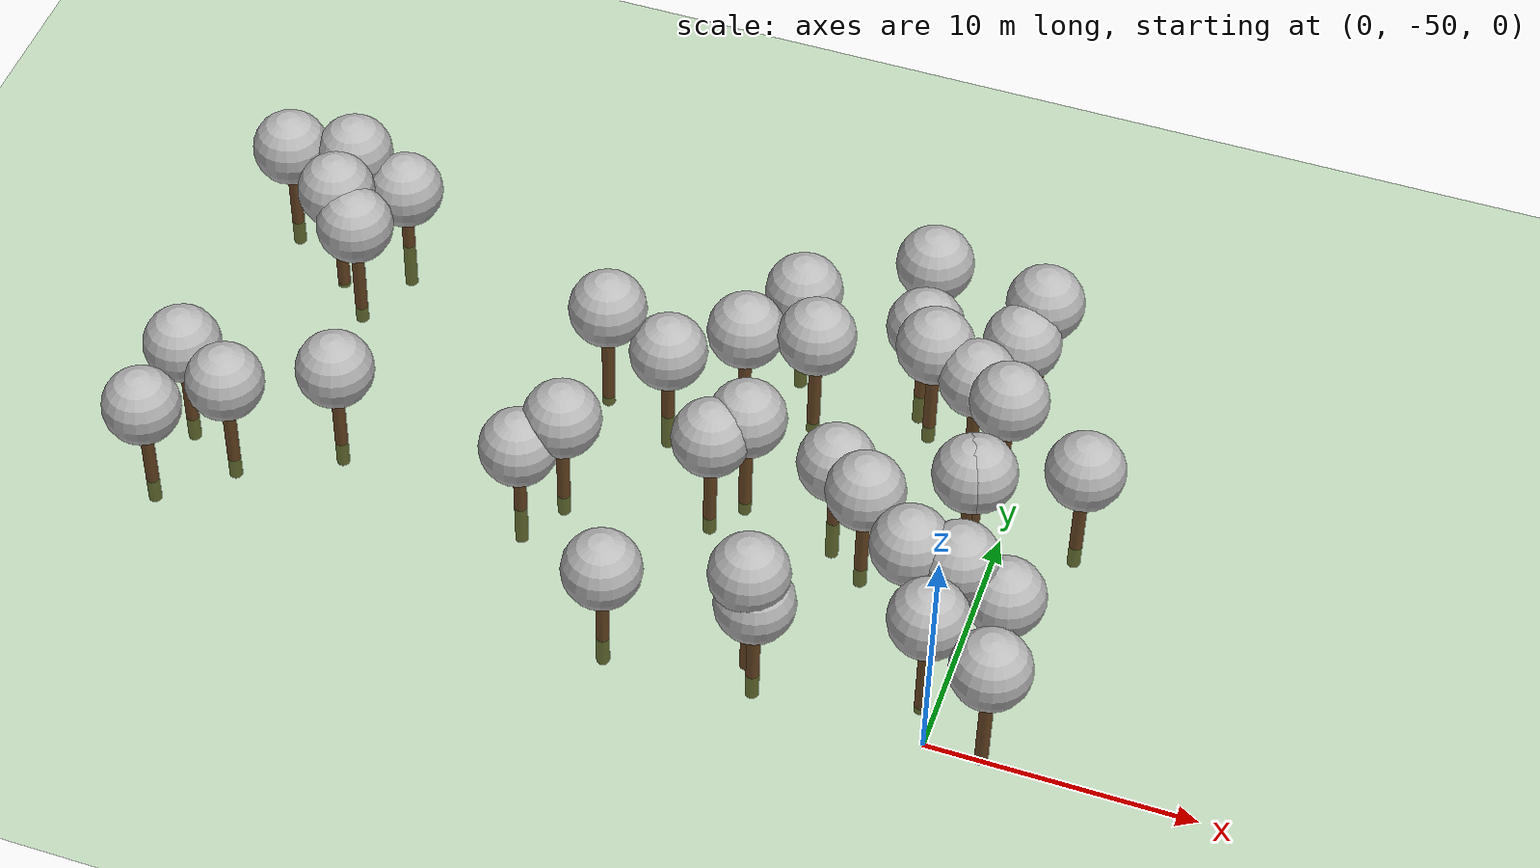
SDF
<sdf version="1.5">
 <world name="default">
  <model name="tree_simple491">
   <static>1</static>
   <link name="link">
    <pose>0 0 0.1 0 -0 0</pose>
    <collision name="collision_trunk">
     <pose>0 0 2 0 -0 0</pose>
     <geometry><cylinder><radius>0.25</radius><length>4</length></cylinder></geometry>
    </collision>
    <collision name="collision_treetop">
     <pose>0 0 5.2 0 -0 0</pose>
     <geometry><sphere><radius>1.5</radius></sphere></geometry>
    </collision>
    <visual name="trunk">
     <pose>0 0 2 0 -0 0</pose>
     <geometry><cylinder><radius>0.25</radius><length>4</length></cylinder></geometry>
     <material>
      <script>
       <uri>model://tree_simple/scripts</uri>
       <uri>model://tree_simple/materials/textures</uri>
       <name>TreeSimple/Trunk</name>
      </script>
     </material>
    </visual>
    <visual name="treetop">
     <pose>0 0 5.2 0 -0 0</pose>
     <geometry><sphere><radius>1.5</radius></sphere></geometry>
     <material>
      <script>
       <uri>model://tree_simple/scripts</uri>
       <uri>model://tree_simple/materials/textures</uri>
       <name>TreeSimple/Treetop</name>
      </script>
     </material>
    </visual>
   </link>
   <pose>-12.3902503735 -49.1082665042 -1.4765880961699187 0 -0 0</pose>
  </model>
  <model name="tree_simple458">
   <static>1</static>
   <link name="link">
    <pose>0 0 0.1 0 -0 0</pose>
    <collision name="collision_trunk">
     <pose>0 0 2 0 -0 0</pose>
     <geometry><cylinder><radius>0.25</radius><length>4</length></cylinder></geometry>
    </collision>
    <collision name="collision_treetop">
     <pose>0 0 5.2 0 -0 0</pose>
     <geometry><sphere><radius>1.5</radius></sphere></geometry>
    </collision>
    <visual name="trunk">
     <pose>0 0 2 0 -0 0</pose>
     <geometry><cylinder><radius>0.25</radius><length>4</length></cylinder></geometry>
     <material>
      <script>
       <uri>model://tree_simple/scripts</uri>
       <uri>model://tree_simple/materials/textures</uri>
       <name>TreeSimple/Trunk</name>
      </script>
     </material>
    </visual>
    <visual name="treetop">
     <pose>0 0 5.2 0 -0 0</pose>
     <geometry><sphere><radius>1.5</radius></sphere></geometry>
     <material>
      <script>
       <uri>model://tree_simple/scripts</uri>
       <uri>model://tree_simple/materials/textures</uri>
       <name>TreeSimple/Treetop</name>
      </script>
     </material>
    </visual>
   </link>
   <pose>2.06613671761 -49.6676263837 -0.43221228947725965 0 -0 0</pose>
  </model>
  <model name="tree_simple454">
   <static>1</static>
   <link name="link">
    <pose>0 0 0.1 0 -0 0</pose>
    <collision name="collision_trunk">
     <pose>0 0 2 0 -0 0</pose>
     <geometry><cylinder><radius>0.25</radius><length>4</length></cylinder></geometry>
    </collision>
    <collision name="collision_treetop">
     <pose>0 0 5.2 0 -0 0</pose>
     <geometry><sphere><radius>1.5</radius></sphere></geometry>
    </collision>
    <visual name="trunk">
     <pose>0 0 2 0 -0 0</pose>
     <geometry><cylinder><radius>0.25</radius><length>4</length></cylinder></geometry>
     <material>
      <script>
       <uri>model://tree_simple/scripts</uri>
       <uri>model://tree_simple/materials/textures</uri>
       <name>TreeSimple/Trunk</name>
      </script>
     </material>
    </visual>
    <visual name="treetop">
     <pose>0 0 5.2 0 -0 0</pose>
     <geometry><sphere><radius>1.5</radius></sphere></geometry>
     <material>
      <script>
       <uri>model://tree_simple/scripts</uri>
       <uri>model://tree_simple/materials/textures</uri>
       <name>TreeSimple/Treetop</name>
      </script>
     </material>
    </visual>
   </link>
   <pose>-1.19781681146 -40.4261160925 -1.4480679894615223 0 -0 0</pose>
  </model>
  <model name="tree_simple447">
   <static>1</static>
   <link name="link">
    <pose>0 0 0.1 0 -0 0</pose>
    <collision name="collision_trunk">
     <pose>0 0 2 0 -0 0</pose>
     <geometry><cylinder><radius>0.25</radius><length>4</length></cylinder></geometry>
    </collision>
    <collision name="collision_treetop">
     <pose>0 0 5.2 0 -0 0</pose>
     <geometry><sphere><radius>1.5</radius></sphere></geometry>
    </collision>
    <visual name="trunk">
     <pose>0 0 2 0 -0 0</pose>
     <geometry><cylinder><radius>0.25</radius><length>4</length></cylinder></geometry>
     <material>
      <script>
       <uri>model://tree_simple/scripts</uri>
       <uri>model://tree_simple/materials/textures</uri>
       <name>TreeSimple/Trunk</name>
      </script>
     </material>
    </visual>
    <visual name="treetop">
     <pose>0 0 5.2 0 -0 0</pose>
     <geometry><sphere><radius>1.5</radius></sphere></geometry>
     <material>
      <script>
       <uri>model://tree_simple/scripts</uri>
       <uri>model://tree_simple/materials/textures</uri>
       <name>TreeSimple/Treetop</name>
      </script>
     </material>
    </visual>
   </link>
   <pose>-6.1509747219 -41.0422803315 -2.0466251988386843 0 -0 0</pose>
  </model>
  <model name="tree_simple433">
   <static>1</static>
   <link name="link">
    <pose>0 0 0.1 0 -0 0</pose>
    <collision name="collision_trunk">
     <pose>0 0 2 0 -0 0</pose>
     <geometry><cylinder><radius>0.25</radius><length>4</length></cylinder></geometry>
    </collision>
    <collision name="collision_treetop">
     <pose>0 0 5.2 0 -0 0</pose>
     <geometry><sphere><radius>1.5</radius></sphere></geometry>
    </collision>
    <visual name="trunk">
     <pose>0 0 2 0 -0 0</pose>
     <geometry><cylinder><radius>0.25</radius><length>4</length></cylinder></geometry>
     <material>
      <script>
       <uri>model://tree_simple/scripts</uri>
       <uri>model://tree_simple/materials/textures</uri>
       <name>TreeSimple/Trunk</name>
      </script>
     </material>
    </visual>
    <visual name="treetop">
     <pose>0 0 5.2 0 -0 0</pose>
     <geometry><sphere><radius>1.5</radius></sphere></geometry>
     <material>
      <script>
       <uri>model://tree_simple/scripts</uri>
       <uri>model://tree_simple/materials/textures</uri>
       <name>TreeSimple/Treetop</name>
      </script>
     </material>
    </visual>
   </link>
   <pose>-27.0163612707 -36.6075625798 -0.8725457101761771 0 -0 0</pose>
  </model>
  <model name="tree_simple408">
   <static>1</static>
   <link name="link">
    <pose>0 0 0.1 0 -0 0</pose>
    <collision name="collision_trunk">
     <pose>0 0 2 0 -0 0</pose>
     <geometry><cylinder><radius>0.25</radius><length>4</length></cylinder></geometry>
    </collision>
    <collision name="collision_treetop">
     <pose>0 0 5.2 0 -0 0</pose>
     <geometry><sphere><radius>1.5</radius></sphere></geometry>
    </collision>
    <visual name="trunk">
     <pose>0 0 2 0 -0 0</pose>
     <geometry><cylinder><radius>0.25</radius><length>4</length></cylinder></geometry>
     <material>
      <script>
       <uri>model://tree_simple/scripts</uri>
       <uri>model://tree_simple/materials/textures</uri>
       <name>TreeSimple/Trunk</name>
      </script>
     </material>
    </visual>
    <visual name="treetop">
     <pose>0 0 5.2 0 -0 0</pose>
     <geometry><sphere><radius>1.5</radius></sphere></geometry>
     <material>
      <script>
       <uri>model://tree_simple/scripts</uri>
       <uri>model://tree_simple/materials/textures</uri>
       <name>TreeSimple/Treetop</name>
      </script>
     </material>
    </visual>
   </link>
   <pose>-16.0994347695 -43.1531583175 -1.0959608389222675 0 -0 0</pose>
  </model>
  <model name="tree_simple407">
   <static>1</static>
   <link name="link">
    <pose>0 0 0.1 0 -0 0</pose>
    <collision name="collision_trunk">
     <pose>0 0 2 0 -0 0</pose>
     <geometry><cylinder><radius>0.25</radius><length>4</length></cylinder></geometry>
    </collision>
    <collision name="collision_treetop">
     <pose>0 0 5.2 0 -0 0</pose>
     <geometry><sphere><radius>1.5</radius></sphere></geometry>
    </collision>
    <visual name="trunk">
     <pose>0 0 2 0 -0 0</pose>
     <geometry><cylinder><radius>0.25</radius><length>4</length></cylinder></geometry>
     <material>
      <script>
       <uri>model://tree_simple/scripts</uri>
       <uri>model://tree_simple/materials/textures</uri>
       <name>TreeSimple/Trunk</name>
      </script>
     </material>
    </visual>
    <visual name="treetop">
     <pose>0 0 5.2 0 -0 0</pose>
     <geometry><sphere><radius>1.5</radius></sphere></geometry>
     <material>
      <script>
       <uri>model://tree_simple/scripts</uri>
       <uri>model://tree_simple/materials/textures</uri>
       <name>TreeSimple/Treetop</name>
      </script>
     </material>
    </visual>
   </link>
   <pose>-31.2268758756 -33.0617209784 -1.2989755848675624 0 -0 0</pose>
  </model>
  <model name="tree_simple397">
   <static>1</static>
   <link name="link">
    <pose>0 0 0.1 0 -0 0</pose>
    <collision name="collision_trunk">
     <pose>0 0 2 0 -0 0</pose>
     <geometry><cylinder><radius>0.25</radius><length>4</length></cylinder></geometry>
    </collision>
    <collision name="collision_treetop">
     <pose>0 0 5.2 0 -0 0</pose>
     <geometry><sphere><radius>1.5</radius></sphere></geometry>
    </collision>
    <visual name="trunk">
     <pose>0 0 2 0 -0 0</pose>
     <geometry><cylinder><radius>0.25</radius><length>4</length></cylinder></geometry>
     <material>
      <script>
       <uri>model://tree_simple/scripts</uri>
       <uri>model://tree_simple/materials/textures</uri>
       <name>TreeSimple/Trunk</name>
      </script>
     </material>
    </visual>
    <visual name="treetop">
     <pose>0 0 5.2 0 -0 0</pose>
     <geometry><sphere><radius>1.5</radius></sphere></geometry>
     <material>
      <script>
       <uri>model://tree_simple/scripts</uri>
       <uri>model://tree_simple/materials/textures</uri>
       <name>TreeSimple/Treetop</name>
      </script>
     </material>
    </visual>
   </link>
   <pose>-11.3370979395 -35.9987020926 -1.8471052126580298 0 -0 0</pose>
  </model>
  <model name="tree_simple382">
   <static>1</static>
   <link name="link">
    <pose>0 0 0.1 0 -0 0</pose>
    <collision name="collision_trunk">
     <pose>0 0 2 0 -0 0</pose>
     <geometry><cylinder><radius>0.25</radius><length>4</length></cylinder></geometry>
    </collision>
    <collision name="collision_treetop">
     <pose>0 0 5.2 0 -0 0</pose>
     <geometry><sphere><radius>1.5</radius></sphere></geometry>
    </collision>
    <visual name="trunk">
     <pose>0 0 2 0 -0 0</pose>
     <geometry><cylinder><radius>0.25</radius><length>4</length></cylinder></geometry>
     <material>
      <script>
       <uri>model://tree_simple/scripts</uri>
       <uri>model://tree_simple/materials/textures</uri>
       <name>TreeSimple/Trunk</name>
      </script>
     </material>
    </visual>
    <visual name="treetop">
     <pose>0 0 5.2 0 -0 0</pose>
     <geometry><sphere><radius>1.5</radius></sphere></geometry>
     <material>
      <script>
       <uri>model://tree_simple/scripts</uri>
       <uri>model://tree_simple/materials/textures</uri>
       <name>TreeSimple/Treetop</name>
      </script>
     </material>
    </visual>
   </link>
   <pose>-13.7339502639 -38.0385425652 -1.8283140507629358 0 -0 0</pose>
  </model>
  <model name="tree_simple368">
   <static>1</static>
   <link name="link">
    <pose>0 0 0.1 0 -0 0</pose>
    <collision name="collision_trunk">
     <pose>0 0 2 0 -0 0</pose>
     <geometry><cylinder><radius>0.25</radius><length>4</length></cylinder></geometry>
    </collision>
    <collision name="collision_treetop">
     <pose>0 0 5.2 0 -0 0</pose>
     <geometry><sphere><radius>1.5</radius></sphere></geometry>
    </collision>
    <visual name="trunk">
     <pose>0 0 2 0 -0 0</pose>
     <geometry><cylinder><radius>0.25</radius><length>4</length></cylinder></geometry>
     <material>
      <script>
       <uri>model://tree_simple/scripts</uri>
       <uri>model://tree_simple/materials/textures</uri>
       <name>TreeSimple/Trunk</name>
      </script>
     </material>
    </visual>
    <visual name="treetop">
     <pose>0 0 5.2 0 -0 0</pose>
     <geometry><sphere><radius>1.5</radius></sphere></geometry>
     <material>
      <script>
       <uri>model://tree_simple/scripts</uri>
       <uri>model://tree_simple/materials/textures</uri>
       <name>TreeSimple/Treetop</name>
      </script>
     </material>
    </visual>
   </link>
   <pose>-2.27490769551 -35.975306792 -1.2906108035373156 0 -0 0</pose>
  </model>
  <model name="tree_simple357">
   <static>1</static>
   <link name="link">
    <pose>0 0 0.1 0 -0 0</pose>
    <collision name="collision_trunk">
     <pose>0 0 2 0 -0 0</pose>
     <geometry><cylinder><radius>0.25</radius><length>4</length></cylinder></geometry>
    </collision>
    <collision name="collision_treetop">
     <pose>0 0 5.2 0 -0 0</pose>
     <geometry><sphere><radius>1.5</radius></sphere></geometry>
    </collision>
    <visual name="trunk">
     <pose>0 0 2 0 -0 0</pose>
     <geometry><cylinder><radius>0.25</radius><length>4</length></cylinder></geometry>
     <material>
      <script>
       <uri>model://tree_simple/scripts</uri>
       <uri>model://tree_simple/materials/textures</uri>
       <name>TreeSimple/Trunk</name>
      </script>
     </material>
    </visual>
    <visual name="treetop">
     <pose>0 0 5.2 0 -0 0</pose>
     <geometry><sphere><radius>1.5</radius></sphere></geometry>
     <material>
      <script>
       <uri>model://tree_simple/scripts</uri>
       <uri>model://tree_simple/materials/textures</uri>
       <name>TreeSimple/Treetop</name>
      </script>
     </material>
    </visual>
   </link>
   <pose>-28.5404779553 -45.5660911112 -1.1019529273899091 0 -0 0</pose>
  </model>
  <model name="tree_simple348">
   <static>1</static>
   <link name="link">
    <pose>0 0 0.1 0 -0 0</pose>
    <collision name="collision_trunk">
     <pose>0 0 2 0 -0 0</pose>
     <geometry><cylinder><radius>0.25</radius><length>4</length></cylinder></geometry>
    </collision>
    <collision name="collision_treetop">
     <pose>0 0 5.2 0 -0 0</pose>
     <geometry><sphere><radius>1.5</radius></sphere></geometry>
    </collision>
    <visual name="trunk">
     <pose>0 0 2 0 -0 0</pose>
     <geometry><cylinder><radius>0.25</radius><length>4</length></cylinder></geometry>
     <material>
      <script>
       <uri>model://tree_simple/scripts</uri>
       <uri>model://tree_simple/materials/textures</uri>
       <name>TreeSimple/Trunk</name>
      </script>
     </material>
    </visual>
    <visual name="treetop">
     <pose>0 0 5.2 0 -0 0</pose>
     <geometry><sphere><radius>1.5</radius></sphere></geometry>
     <material>
      <script>
       <uri>model://tree_simple/scripts</uri>
       <uri>model://tree_simple/materials/textures</uri>
       <name>TreeSimple/Treetop</name>
      </script>
     </material>
    </visual>
   </link>
   <pose>-31.0103174471 -47.5688671712 -1.2379988239180781 0 -0 0</pose>
  </model>
  <model name="tree_simple344">
   <static>1</static>
   <link name="link">
    <pose>0 0 0.1 0 -0 0</pose>
    <collision name="collision_trunk">
     <pose>0 0 2 0 -0 0</pose>
     <geometry><cylinder><radius>0.25</radius><length>4</length></cylinder></geometry>
    </collision>
    <collision name="collision_treetop">
     <pose>0 0 5.2 0 -0 0</pose>
     <geometry><sphere><radius>1.5</radius></sphere></geometry>
    </collision>
    <visual name="trunk">
     <pose>0 0 2 0 -0 0</pose>
     <geometry><cylinder><radius>0.25</radius><length>4</length></cylinder></geometry>
     <material>
      <script>
       <uri>model://tree_simple/scripts</uri>
       <uri>model://tree_simple/materials/textures</uri>
       <name>TreeSimple/Trunk</name>
      </script>
     </material>
    </visual>
    <visual name="treetop">
     <pose>0 0 5.2 0 -0 0</pose>
     <geometry><sphere><radius>1.5</radius></sphere></geometry>
     <material>
      <script>
       <uri>model://tree_simple/scripts</uri>
       <uri>model://tree_simple/materials/textures</uri>
       <name>TreeSimple/Treetop</name>
      </script>
     </material>
    </visual>
   </link>
   <pose>-1.01406181855 -40.356708741 -1.4358924933578103 0 -0 0</pose>
  </model>
  <model name="tree_simple334">
   <static>1</static>
   <link name="link">
    <pose>0 0 0.1 0 -0 0</pose>
    <collision name="collision_trunk">
     <pose>0 0 2 0 -0 0</pose>
     <geometry><cylinder><radius>0.25</radius><length>4</length></cylinder></geometry>
    </collision>
    <collision name="collision_treetop">
     <pose>0 0 5.2 0 -0 0</pose>
     <geometry><sphere><radius>1.5</radius></sphere></geometry>
    </collision>
    <visual name="trunk">
     <pose>0 0 2 0 -0 0</pose>
     <geometry><cylinder><radius>0.25</radius><length>4</length></cylinder></geometry>
     <material>
      <script>
       <uri>model://tree_simple/scripts</uri>
       <uri>model://tree_simple/materials/textures</uri>
       <name>TreeSimple/Trunk</name>
      </script>
     </material>
    </visual>
    <visual name="treetop">
     <pose>0 0 5.2 0 -0 0</pose>
     <geometry><sphere><radius>1.5</radius></sphere></geometry>
     <material>
      <script>
       <uri>model://tree_simple/scripts</uri>
       <uri>model://tree_simple/materials/textures</uri>
       <name>TreeSimple/Treetop</name>
      </script>
     </material>
    </visual>
   </link>
   <pose>-4.1581298625 -35.2035688942 -0.9701988496011371 0 -0 0</pose>
  </model>
  <model name="tree_simple305">
   <static>1</static>
   <link name="link">
    <pose>0 0 0.1 0 -0 0</pose>
    <collision name="collision_trunk">
     <pose>0 0 2 0 -0 0</pose>
     <geometry><cylinder><radius>0.25</radius><length>4</length></cylinder></geometry>
    </collision>
    <collision name="collision_treetop">
     <pose>0 0 5.2 0 -0 0</pose>
     <geometry><sphere><radius>1.5</radius></sphere></geometry>
    </collision>
    <visual name="trunk">
     <pose>0 0 2 0 -0 0</pose>
     <geometry><cylinder><radius>0.25</radius><length>4</length></cylinder></geometry>
     <material>
      <script>
       <uri>model://tree_simple/scripts</uri>
       <uri>model://tree_simple/materials/textures</uri>
       <name>TreeSimple/Trunk</name>
      </script>
     </material>
    </visual>
    <visual name="treetop">
     <pose>0 0 5.2 0 -0 0</pose>
     <geometry><sphere><radius>1.5</radius></sphere></geometry>
     <material>
      <script>
       <uri>model://tree_simple/scripts</uri>
       <uri>model://tree_simple/materials/textures</uri>
       <name>TreeSimple/Treetop</name>
      </script>
     </material>
    </visual>
   </link>
   <pose>-16.2250054706 -37.82270562 -0.5545832726990889 0 -0 0</pose>
  </model>
  <model name="tree_simple285">
   <static>1</static>
   <link name="link">
    <pose>0 0 0.1 0 -0 0</pose>
    <collision name="collision_trunk">
     <pose>0 0 2 0 -0 0</pose>
     <geometry><cylinder><radius>0.25</radius><length>4</length></cylinder></geometry>
    </collision>
    <collision name="collision_treetop">
     <pose>0 0 5.2 0 -0 0</pose>
     <geometry><sphere><radius>1.5</radius></sphere></geometry>
    </collision>
    <visual name="trunk">
     <pose>0 0 2 0 -0 0</pose>
     <geometry><cylinder><radius>0.25</radius><length>4</length></cylinder></geometry>
     <material>
      <script>
       <uri>model://tree_simple/scripts</uri>
       <uri>model://tree_simple/materials/textures</uri>
       <name>TreeSimple/Trunk</name>
      </script>
     </material>
    </visual>
    <visual name="treetop">
     <pose>0 0 5.2 0 -0 0</pose>
     <geometry><sphere><radius>1.5</radius></sphere></geometry>
     <material>
      <script>
       <uri>model://tree_simple/scripts</uri>
       <uri>model://tree_simple/materials/textures</uri>
       <name>TreeSimple/Treetop</name>
      </script>
     </material>
    </visual>
   </link>
   <pose>-0.758587547347 -37.1758267931 -0.7497815790523655 0 -0 0</pose>
  </model>
  <model name="tree_simple257">
   <static>1</static>
   <link name="link">
    <pose>0 0 0.1 0 -0 0</pose>
    <collision name="collision_trunk">
     <pose>0 0 2 0 -0 0</pose>
     <geometry><cylinder><radius>0.25</radius><length>4</length></cylinder></geometry>
    </collision>
    <collision name="collision_treetop">
     <pose>0 0 5.2 0 -0 0</pose>
     <geometry><sphere><radius>1.5</radius></sphere></geometry>
    </collision>
    <visual name="trunk">
     <pose>0 0 2 0 -0 0</pose>
     <geometry><cylinder><radius>0.25</radius><length>4</length></cylinder></geometry>
     <material>
      <script>
       <uri>model://tree_simple/scripts</uri>
       <uri>model://tree_simple/materials/textures</uri>
       <name>TreeSimple/Trunk</name>
      </script>
     </material>
    </visual>
    <visual name="treetop">
     <pose>0 0 5.2 0 -0 0</pose>
     <geometry><sphere><radius>1.5</radius></sphere></geometry>
     <material>
      <script>
       <uri>model://tree_simple/scripts</uri>
       <uri>model://tree_simple/materials/textures</uri>
       <name>TreeSimple/Treetop</name>
      </script>
     </material>
    </visual>
   </link>
   <pose>-17.4076670765 -44.276485645 -1.9589006023237197 0 -0 0</pose>
  </model>
  <model name="tree_simple227">
   <static>1</static>
   <link name="link">
    <pose>0 0 0.1 0 -0 0</pose>
    <collision name="collision_trunk">
     <pose>0 0 2 0 -0 0</pose>
     <geometry><cylinder><radius>0.25</radius><length>4</length></cylinder></geometry>
    </collision>
    <collision name="collision_treetop">
     <pose>0 0 5.2 0 -0 0</pose>
     <geometry><sphere><radius>1.5</radius></sphere></geometry>
    </collision>
    <visual name="trunk">
     <pose>0 0 2 0 -0 0</pose>
     <geometry><cylinder><radius>0.25</radius><length>4</length></cylinder></geometry>
     <material>
      <script>
       <uri>model://tree_simple/scripts</uri>
       <uri>model://tree_simple/materials/textures</uri>
       <name>TreeSimple/Trunk</name>
      </script>
     </material>
    </visual>
    <visual name="treetop">
     <pose>0 0 5.2 0 -0 0</pose>
     <geometry><sphere><radius>1.5</radius></sphere></geometry>
     <material>
      <script>
       <uri>model://tree_simple/scripts</uri>
       <uri>model://tree_simple/materials/textures</uri>
       <name>TreeSimple/Treetop</name>
      </script>
     </material>
    </visual>
   </link>
   <pose>-10.5932066879 -42.3249701995 -0.9580266898595362 0 -0 0</pose>
  </model>
  <model name="tree_simple223">
   <static>1</static>
   <link name="link">
    <pose>0 0 0.1 0 -0 0</pose>
    <collision name="collision_trunk">
     <pose>0 0 2 0 -0 0</pose>
     <geometry><cylinder><radius>0.25</radius><length>4</length></cylinder></geometry>
    </collision>
    <collision name="collision_treetop">
     <pose>0 0 5.2 0 -0 0</pose>
     <geometry><sphere><radius>1.5</radius></sphere></geometry>
    </collision>
    <visual name="trunk">
     <pose>0 0 2 0 -0 0</pose>
     <geometry><cylinder><radius>0.25</radius><length>4</length></cylinder></geometry>
     <material>
      <script>
       <uri>model://tree_simple/scripts</uri>
       <uri>model://tree_simple/materials/textures</uri>
       <name>TreeSimple/Trunk</name>
      </script>
     </material>
    </visual>
    <visual name="treetop">
     <pose>0 0 5.2 0 -0 0</pose>
     <geometry><sphere><radius>1.5</radius></sphere></geometry>
     <material>
      <script>
       <uri>model://tree_simple/scripts</uri>
       <uri>model://tree_simple/materials/textures</uri>
       <name>TreeSimple/Treetop</name>
      </script>
     </material>
    </visual>
   </link>
   <pose>-0.831429515675 -31.9083877979 -0.7831426879822863 0 -0 0</pose>
  </model>
  <model name="tree_simple198">
   <static>1</static>
   <link name="link">
    <pose>0 0 0.1 0 -0 0</pose>
    <collision name="collision_trunk">
     <pose>0 0 2 0 -0 0</pose>
     <geometry><cylinder><radius>0.25</radius><length>4</length></cylinder></geometry>
    </collision>
    <collision name="collision_treetop">
     <pose>0 0 5.2 0 -0 0</pose>
     <geometry><sphere><radius>1.5</radius></sphere></geometry>
    </collision>
    <visual name="trunk">
     <pose>0 0 2 0 -0 0</pose>
     <geometry><cylinder><radius>0.25</radius><length>4</length></cylinder></geometry>
     <material>
      <script>
       <uri>model://tree_simple/scripts</uri>
       <uri>model://tree_simple/materials/textures</uri>
       <name>TreeSimple/Trunk</name>
      </script>
     </material>
    </visual>
    <visual name="treetop">
     <pose>0 0 5.2 0 -0 0</pose>
     <geometry><sphere><radius>1.5</radius></sphere></geometry>
     <material>
      <script>
       <uri>model://tree_simple/scripts</uri>
       <uri>model://tree_simple/materials/textures</uri>
       <name>TreeSimple/Treetop</name>
      </script>
     </material>
    </visual>
   </link>
   <pose>-28.1666068892 -35.6025820701 -0.3028599954152228 0 -0 0</pose>
  </model>
  <model name="tree_simple143">
   <static>1</static>
   <link name="link">
    <pose>0 0 0.1 0 -0 0</pose>
    <collision name="collision_trunk">
     <pose>0 0 2 0 -0 0</pose>
     <geometry><cylinder><radius>0.25</radius><length>4</length></cylinder></geometry>
    </collision>
    <collision name="collision_treetop">
     <pose>0 0 5.2 0 -0 0</pose>
     <geometry><sphere><radius>1.5</radius></sphere></geometry>
    </collision>
    <visual name="trunk">
     <pose>0 0 2 0 -0 0</pose>
     <geometry><cylinder><radius>0.25</radius><length>4</length></cylinder></geometry>
     <material>
      <script>
       <uri>model://tree_simple/scripts</uri>
       <uri>model://tree_simple/materials/textures</uri>
       <name>TreeSimple/Trunk</name>
      </script>
     </material>
    </visual>
    <visual name="treetop">
     <pose>0 0 5.2 0 -0 0</pose>
     <geometry><sphere><radius>1.5</radius></sphere></geometry>
     <material>
      <script>
       <uri>model://tree_simple/scripts</uri>
       <uri>model://tree_simple/materials/textures</uri>
       <name>TreeSimple/Treetop</name>
      </script>
     </material>
    </visual>
   </link>
   <pose>-9.58958340045 -41.1660757416 -0.756332949373614 0 -0 0</pose>
  </model>
  <model name="tree_simple142">
   <static>1</static>
   <link name="link">
    <pose>0 0 0.1 0 -0 0</pose>
    <collision name="collision_trunk">
     <pose>0 0 2 0 -0 0</pose>
     <geometry><cylinder><radius>0.25</radius><length>4</length></cylinder></geometry>
    </collision>
    <collision name="collision_treetop">
     <pose>0 0 5.2 0 -0 0</pose>
     <geometry><sphere><radius>1.5</radius></sphere></geometry>
    </collision>
    <visual name="trunk">
     <pose>0 0 2 0 -0 0</pose>
     <geometry><cylinder><radius>0.25</radius><length>4</length></cylinder></geometry>
     <material>
      <script>
       <uri>model://tree_simple/scripts</uri>
       <uri>model://tree_simple/materials/textures</uri>
       <name>TreeSimple/Trunk</name>
      </script>
     </material>
    </visual>
    <visual name="treetop">
     <pose>0 0 5.2 0 -0 0</pose>
     <geometry><sphere><radius>1.5</radius></sphere></geometry>
     <material>
      <script>
       <uri>model://tree_simple/scripts</uri>
       <uri>model://tree_simple/materials/textures</uri>
       <name>TreeSimple/Treetop</name>
      </script>
     </material>
    </visual>
   </link>
   <pose>2.70227648478 -39.1925835725 -1.1618441501617585 0 -0 0</pose>
  </model>
  <model name="tree_simple126">
   <static>1</static>
   <link name="link">
    <pose>0 0 0.1 0 -0 0</pose>
    <collision name="collision_trunk">
     <pose>0 0 2 0 -0 0</pose>
     <geometry><cylinder><radius>0.25</radius><length>4</length></cylinder></geometry>
    </collision>
    <collision name="collision_treetop">
     <pose>0 0 5.2 0 -0 0</pose>
     <geometry><sphere><radius>1.5</radius></sphere></geometry>
    </collision>
    <visual name="trunk">
     <pose>0 0 2 0 -0 0</pose>
     <geometry><cylinder><radius>0.25</radius><length>4</length></cylinder></geometry>
     <material>
      <script>
       <uri>model://tree_simple/scripts</uri>
       <uri>model://tree_simple/materials/textures</uri>
       <name>TreeSimple/Trunk</name>
      </script>
     </material>
    </visual>
    <visual name="treetop">
     <pose>0 0 5.2 0 -0 0</pose>
     <geometry><sphere><radius>1.5</radius></sphere></geometry>
     <material>
      <script>
       <uri>model://tree_simple/scripts</uri>
       <uri>model://tree_simple/materials/textures</uri>
       <name>TreeSimple/Treetop</name>
      </script>
     </material>
    </visual>
   </link>
   <pose>-8.40128153864 -36.4846341971 -0.6762629429087038 0 -0 0</pose>
  </model>
  <model name="tree_simple114">
   <static>1</static>
   <link name="link">
    <pose>0 0 0.1 0 -0 0</pose>
    <collision name="collision_trunk">
     <pose>0 0 2 0 -0 0</pose>
     <geometry><cylinder><radius>0.25</radius><length>4</length></cylinder></geometry>
    </collision>
    <collision name="collision_treetop">
     <pose>0 0 5.2 0 -0 0</pose>
     <geometry><sphere><radius>1.5</radius></sphere></geometry>
    </collision>
    <visual name="trunk">
     <pose>0 0 2 0 -0 0</pose>
     <geometry><cylinder><radius>0.25</radius><length>4</length></cylinder></geometry>
     <material>
      <script>
       <uri>model://tree_simple/scripts</uri>
       <uri>model://tree_simple/materials/textures</uri>
       <name>TreeSimple/Trunk</name>
      </script>
     </material>
    </visual>
    <visual name="treetop">
     <pose>0 0 5.2 0 -0 0</pose>
     <geometry><sphere><radius>1.5</radius></sphere></geometry>
     <material>
      <script>
       <uri>model://tree_simple/scripts</uri>
       <uri>model://tree_simple/materials/textures</uri>
       <name>TreeSimple/Treetop</name>
      </script>
     </material>
    </visual>
   </link>
   <pose>-2.17757547104 -45.1286714355 -0.5601259026562574 0 -0 0</pose>
  </model>
  <model name="tree_simple108">
   <static>1</static>
   <link name="link">
    <pose>0 0 0.1 0 -0 0</pose>
    <collision name="collision_trunk">
     <pose>0 0 2 0 -0 0</pose>
     <geometry><cylinder><radius>0.25</radius><length>4</length></cylinder></geometry>
    </collision>
    <collision name="collision_treetop">
     <pose>0 0 5.2 0 -0 0</pose>
     <geometry><sphere><radius>1.5</radius></sphere></geometry>
    </collision>
    <visual name="trunk">
     <pose>0 0 2 0 -0 0</pose>
     <geometry><cylinder><radius>0.25</radius><length>4</length></cylinder></geometry>
     <material>
      <script>
       <uri>model://tree_simple/scripts</uri>
       <uri>model://tree_simple/materials/textures</uri>
       <name>TreeSimple/Trunk</name>
      </script>
     </material>
    </visual>
    <visual name="treetop">
     <pose>0 0 5.2 0 -0 0</pose>
     <geometry><sphere><radius>1.5</radius></sphere></geometry>
     <material>
      <script>
       <uri>model://tree_simple/scripts</uri>
       <uri>model://tree_simple/materials/textures</uri>
       <name>TreeSimple/Treetop</name>
      </script>
     </material>
    </visual>
   </link>
   <pose>1.42931989254 -45.1660279448 -1.972835387194952 0 -0 0</pose>
  </model>
  <model name="tree_simple107">
   <static>1</static>
   <link name="link">
    <pose>0 0 0.1 0 -0 0</pose>
    <collision name="collision_trunk">
     <pose>0 0 2 0 -0 0</pose>
     <geometry><cylinder><radius>0.25</radius><length>4</length></cylinder></geometry>
    </collision>
    <collision name="collision_treetop">
     <pose>0 0 5.2 0 -0 0</pose>
     <geometry><sphere><radius>1.5</radius></sphere></geometry>
    </collision>
    <visual name="trunk">
     <pose>0 0 2 0 -0 0</pose>
     <geometry><cylinder><radius>0.25</radius><length>4</length></cylinder></geometry>
     <material>
      <script>
       <uri>model://tree_simple/scripts</uri>
       <uri>model://tree_simple/materials/textures</uri>
       <name>TreeSimple/Trunk</name>
      </script>
     </material>
    </visual>
    <visual name="treetop">
     <pose>0 0 5.2 0 -0 0</pose>
     <geometry><sphere><radius>1.5</radius></sphere></geometry>
     <material>
      <script>
       <uri>model://tree_simple/scripts</uri>
       <uri>model://tree_simple/materials/textures</uri>
       <name>TreeSimple/Treetop</name>
      </script>
     </material>
    </visual>
   </link>
   <pose>-1.23057164025 -33.5425651467 -1.4482263737798728 0 -0 0</pose>
  </model>
  <model name="tree_simple102">
   <static>1</static>
   <link name="link">
    <pose>0 0 0.1 0 -0 0</pose>
    <collision name="collision_trunk">
     <pose>0 0 2 0 -0 0</pose>
     <geometry><cylinder><radius>0.25</radius><length>4</length></cylinder></geometry>
    </collision>
    <collision name="collision_treetop">
     <pose>0 0 5.2 0 -0 0</pose>
     <geometry><sphere><radius>1.5</radius></sphere></geometry>
    </collision>
    <visual name="trunk">
     <pose>0 0 2 0 -0 0</pose>
     <geometry><cylinder><radius>0.25</radius><length>4</length></cylinder></geometry>
     <material>
      <script>
       <uri>model://tree_simple/scripts</uri>
       <uri>model://tree_simple/materials/textures</uri>
       <name>TreeSimple/Trunk</name>
      </script>
     </material>
    </visual>
    <visual name="treetop">
     <pose>0 0 5.2 0 -0 0</pose>
     <geometry><sphere><radius>1.5</radius></sphere></geometry>
     <material>
      <script>
       <uri>model://tree_simple/scripts</uri>
       <uri>model://tree_simple/materials/textures</uri>
       <name>TreeSimple/Treetop</name>
      </script>
     </material>
    </visual>
   </link>
   <pose>-9.77870020383 -33.6944059178 -1.4504910502109862 0 -0 0</pose>
  </model>
  <model name="tree_simple90">
   <static>1</static>
   <link name="link">
    <pose>0 0 0.1 0 -0 0</pose>
    <collision name="collision_trunk">
     <pose>0 0 2 0 -0 0</pose>
     <geometry><cylinder><radius>0.25</radius><length>4</length></cylinder></geometry>
    </collision>
    <collision name="collision_treetop">
     <pose>0 0 5.2 0 -0 0</pose>
     <geometry><sphere><radius>1.5</radius></sphere></geometry>
    </collision>
    <visual name="trunk">
     <pose>0 0 2 0 -0 0</pose>
     <geometry><cylinder><radius>0.25</radius><length>4</length></cylinder></geometry>
     <material>
      <script>
       <uri>model://tree_simple/scripts</uri>
       <uri>model://tree_simple/materials/textures</uri>
       <name>TreeSimple/Trunk</name>
      </script>
     </material>
    </visual>
    <visual name="treetop">
     <pose>0 0 5.2 0 -0 0</pose>
     <geometry><sphere><radius>1.5</radius></sphere></geometry>
     <material>
      <script>
       <uri>model://tree_simple/scripts</uri>
       <uri>model://tree_simple/materials/textures</uri>
       <name>TreeSimple/Treetop</name>
      </script>
     </material>
    </visual>
   </link>
   <pose>-7.02064767481 -48.7132309456 -0.0 0 -0 0</pose>
  </model>
  <model name="tree_simple87">
   <static>1</static>
   <link name="link">
    <pose>0 0 0.1 0 -0 0</pose>
    <collision name="collision_trunk">
     <pose>0 0 2 0 -0 0</pose>
     <geometry><cylinder><radius>0.25</radius><length>4</length></cylinder></geometry>
    </collision>
    <collision name="collision_treetop">
     <pose>0 0 5.2 0 -0 0</pose>
     <geometry><sphere><radius>1.5</radius></sphere></geometry>
    </collision>
    <visual name="trunk">
     <pose>0 0 2 0 -0 0</pose>
     <geometry><cylinder><radius>0.25</radius><length>4</length></cylinder></geometry>
     <material>
      <script>
       <uri>model://tree_simple/scripts</uri>
       <uri>model://tree_simple/materials/textures</uri>
       <name>TreeSimple/Trunk</name>
      </script>
     </material>
    </visual>
    <visual name="treetop">
     <pose>0 0 5.2 0 -0 0</pose>
     <geometry><sphere><radius>1.5</radius></sphere></geometry>
     <material>
      <script>
       <uri>model://tree_simple/scripts</uri>
       <uri>model://tree_simple/materials/textures</uri>
       <name>TreeSimple/Treetop</name>
      </script>
     </material>
    </visual>
   </link>
   <pose>-0.355859953676 -45.0259101281 -0.842754365180918 0 -0 0</pose>
  </model>
  <model name="tree_simple71">
   <static>1</static>
   <link name="link">
    <pose>0 0 0.1 0 -0 0</pose>
    <collision name="collision_trunk">
     <pose>0 0 2 0 -0 0</pose>
     <geometry><cylinder><radius>0.25</radius><length>4</length></cylinder></geometry>
    </collision>
    <collision name="collision_treetop">
     <pose>0 0 5.2 0 -0 0</pose>
     <geometry><sphere><radius>1.5</radius></sphere></geometry>
    </collision>
    <visual name="trunk">
     <pose>0 0 2 0 -0 0</pose>
     <geometry><cylinder><radius>0.25</radius><length>4</length></cylinder></geometry>
     <material>
      <script>
       <uri>model://tree_simple/scripts</uri>
       <uri>model://tree_simple/materials/textures</uri>
       <name>TreeSimple/Trunk</name>
      </script>
     </material>
    </visual>
    <visual name="treetop">
     <pose>0 0 5.2 0 -0 0</pose>
     <geometry><sphere><radius>1.5</radius></sphere></geometry>
     <material>
      <script>
       <uri>model://tree_simple/scripts</uri>
       <uri>model://tree_simple/materials/textures</uri>
       <name>TreeSimple/Treetop</name>
      </script>
     </material>
    </visual>
   </link>
   <pose>-30.8835620434 -44.1797881367 -1.2671658026898929 0 -0 0</pose>
  </model>
  <model name="tree_simple58">
   <static>1</static>
   <link name="link">
    <pose>0 0 0.1 0 -0 0</pose>
    <collision name="collision_trunk">
     <pose>0 0 2 0 -0 0</pose>
     <geometry><cylinder><radius>0.25</radius><length>4</length></cylinder></geometry>
    </collision>
    <collision name="collision_treetop">
     <pose>0 0 5.2 0 -0 0</pose>
     <geometry><sphere><radius>1.5</radius></sphere></geometry>
    </collision>
    <visual name="trunk">
     <pose>0 0 2 0 -0 0</pose>
     <geometry><cylinder><radius>0.25</radius><length>4</length></cylinder></geometry>
     <material>
      <script>
       <uri>model://tree_simple/scripts</uri>
       <uri>model://tree_simple/materials/textures</uri>
       <name>TreeSimple/Trunk</name>
      </script>
     </material>
    </visual>
    <visual name="treetop">
     <pose>0 0 5.2 0 -0 0</pose>
     <geometry><sphere><radius>1.5</radius></sphere></geometry>
     <material>
      <script>
       <uri>model://tree_simple/scripts</uri>
       <uri>model://tree_simple/materials/textures</uri>
       <name>TreeSimple/Treetop</name>
      </script>
     </material>
    </visual>
   </link>
   <pose>-4.91491945588 -33.8245636998 -1.5699662355899129 0 -0 0</pose>
  </model>
  <model name="tree_simple51">
   <static>1</static>
   <link name="link">
    <pose>0 0 0.1 0 -0 0</pose>
    <collision name="collision_trunk">
     <pose>0 0 2 0 -0 0</pose>
     <geometry><cylinder><radius>0.25</radius><length>4</length></cylinder></geometry>
    </collision>
    <collision name="collision_treetop">
     <pose>0 0 5.2 0 -0 0</pose>
     <geometry><sphere><radius>1.5</radius></sphere></geometry>
    </collision>
    <visual name="trunk">
     <pose>0 0 2 0 -0 0</pose>
     <geometry><cylinder><radius>0.25</radius><length>4</length></cylinder></geometry>
     <material>
      <script>
       <uri>model://tree_simple/scripts</uri>
       <uri>model://tree_simple/materials/textures</uri>
       <name>TreeSimple/Trunk</name>
      </script>
     </material>
    </visual>
    <visual name="treetop">
     <pose>0 0 5.2 0 -0 0</pose>
     <geometry><sphere><radius>1.5</radius></sphere></geometry>
     <material>
      <script>
       <uri>model://tree_simple/scripts</uri>
       <uri>model://tree_simple/materials/textures</uri>
       <name>TreeSimple/Treetop</name>
      </script>
     </material>
    </visual>
   </link>
   <pose>-0.589457780756 -48.2328311378 -0.43658553994136784 0 -0 0</pose>
  </model>
  <model name="tree_simple35">
   <static>1</static>
   <link name="link">
    <pose>0 0 0.1 0 -0 0</pose>
    <collision name="collision_trunk">
     <pose>0 0 2 0 -0 0</pose>
     <geometry><cylinder><radius>0.25</radius><length>4</length></cylinder></geometry>
    </collision>
    <collision name="collision_treetop">
     <pose>0 0 5.2 0 -0 0</pose>
     <geometry><sphere><radius>1.5</radius></sphere></geometry>
    </collision>
    <visual name="trunk">
     <pose>0 0 2 0 -0 0</pose>
     <geometry><cylinder><radius>0.25</radius><length>4</length></cylinder></geometry>
     <material>
      <script>
       <uri>model://tree_simple/scripts</uri>
       <uri>model://tree_simple/materials/textures</uri>
       <name>TreeSimple/Trunk</name>
      </script>
     </material>
    </visual>
    <visual name="treetop">
     <pose>0 0 5.2 0 -0 0</pose>
     <geometry><sphere><radius>1.5</radius></sphere></geometry>
     <material>
      <script>
       <uri>model://tree_simple/scripts</uri>
       <uri>model://tree_simple/materials/textures</uri>
       <name>TreeSimple/Treetop</name>
      </script>
     </material>
    </visual>
   </link>
   <pose>-26.5218868534 -32.8279754305 -2.3319580261386212 0 -0 0</pose>
  </model>
  <model name="tree_simple27">
   <static>1</static>
   <link name="link">
    <pose>0 0 0.1 0 -0 0</pose>
    <collision name="collision_trunk">
     <pose>0 0 2 0 -0 0</pose>
     <geometry><cylinder><radius>0.25</radius><length>4</length></cylinder></geometry>
    </collision>
    <collision name="collision_treetop">
     <pose>0 0 5.2 0 -0 0</pose>
     <geometry><sphere><radius>1.5</radius></sphere></geometry>
    </collision>
    <visual name="trunk">
     <pose>0 0 2 0 -0 0</pose>
     <geometry><cylinder><radius>0.25</radius><length>4</length></cylinder></geometry>
     <material>
      <script>
       <uri>model://tree_simple/scripts</uri>
       <uri>model://tree_simple/materials/textures</uri>
       <name>TreeSimple/Trunk</name>
      </script>
     </material>
    </visual>
    <visual name="treetop">
     <pose>0 0 5.2 0 -0 0</pose>
     <geometry><sphere><radius>1.5</radius></sphere></geometry>
     <material>
      <script>
       <uri>model://tree_simple/scripts</uri>
       <uri>model://tree_simple/materials/textures</uri>
       <name>TreeSimple/Treetop</name>
      </script>
     </material>
    </visual>
   </link>
   <pose>-28.7263520245 -32.4988311651 -1.2529488333285024 0 -0 0</pose>
  </model>
  <model name="tree_simple26">
   <static>1</static>
   <link name="link">
    <pose>0 0 0.1 0 -0 0</pose>
    <collision name="collision_trunk">
     <pose>0 0 2 0 -0 0</pose>
     <geometry><cylinder><radius>0.25</radius><length>4</length></cylinder></geometry>
    </collision>
    <collision name="collision_treetop">
     <pose>0 0 5.2 0 -0 0</pose>
     <geometry><sphere><radius>1.5</radius></sphere></geometry>
    </collision>
    <visual name="trunk">
     <pose>0 0 2 0 -0 0</pose>
     <geometry><cylinder><radius>0.25</radius><length>4</length></cylinder></geometry>
     <material>
      <script>
       <uri>model://tree_simple/scripts</uri>
       <uri>model://tree_simple/materials/textures</uri>
       <name>TreeSimple/Trunk</name>
      </script>
     </material>
    </visual>
    <visual name="treetop">
     <pose>0 0 5.2 0 -0 0</pose>
     <geometry><sphere><radius>1.5</radius></sphere></geometry>
     <material>
      <script>
       <uri>model://tree_simple/scripts</uri>
       <uri>model://tree_simple/materials/textures</uri>
       <name>TreeSimple/Treetop</name>
      </script>
     </material>
    </visual>
   </link>
   <pose>-25.0091602232 -43.4680518984 -1.3015241739067749 0 -0 0</pose>
  </model>
  <model name="tree_simple23">
   <static>1</static>
   <link name="link">
    <pose>0 0 0.1 0 -0 0</pose>
    <collision name="collision_trunk">
     <pose>0 0 2 0 -0 0</pose>
     <geometry><cylinder><radius>0.25</radius><length>4</length></cylinder></geometry>
    </collision>
    <collision name="collision_treetop">
     <pose>0 0 5.2 0 -0 0</pose>
     <geometry><sphere><radius>1.5</radius></sphere></geometry>
    </collision>
    <visual name="trunk">
     <pose>0 0 2 0 -0 0</pose>
     <geometry><cylinder><radius>0.25</radius><length>4</length></cylinder></geometry>
     <material>
      <script>
       <uri>model://tree_simple/scripts</uri>
       <uri>model://tree_simple/materials/textures</uri>
       <name>TreeSimple/Trunk</name>
      </script>
     </material>
    </visual>
    <visual name="treetop">
     <pose>0 0 5.2 0 -0 0</pose>
     <geometry><sphere><radius>1.5</radius></sphere></geometry>
     <material>
      <script>
       <uri>model://tree_simple/scripts</uri>
       <uri>model://tree_simple/materials/textures</uri>
       <name>TreeSimple/Treetop</name>
      </script>
     </material>
    </visual>
   </link>
   <pose>-6.72422340922 -48.8953285145 -1.298789992971462 0 -0 0</pose>
  </model>
  <model name="tree_simple10">
   <static>1</static>
   <link name="link">
    <pose>0 0 0.1 0 -0 0</pose>
    <collision name="collision_trunk">
     <pose>0 0 2 0 -0 0</pose>
     <geometry><cylinder><radius>0.25</radius><length>4</length></cylinder></geometry>
    </collision>
    <collision name="collision_treetop">
     <pose>0 0 5.2 0 -0 0</pose>
     <geometry><sphere><radius>1.5</radius></sphere></geometry>
    </collision>
    <visual name="trunk">
     <pose>0 0 2 0 -0 0</pose>
     <geometry><cylinder><radius>0.25</radius><length>4</length></cylinder></geometry>
     <material>
      <script>
       <uri>model://tree_simple/scripts</uri>
       <uri>model://tree_simple/materials/textures</uri>
       <name>TreeSimple/Trunk</name>
      </script>
     </material>
    </visual>
    <visual name="treetop">
     <pose>0 0 5.2 0 -0 0</pose>
     <geometry><sphere><radius>1.5</radius></sphere></geometry>
     <material>
      <script>
       <uri>model://tree_simple/scripts</uri>
       <uri>model://tree_simple/materials/textures</uri>
       <name>TreeSimple/Treetop</name>
      </script>
     </material>
    </visual>
   </link>
   <pose>-5.37126893009 -31.1523453125 -0.9214122566113847 0 -0 0</pose>
  </model>
  <model name="tree_simple4">
   <static>1</static>
   <link name="link">
    <pose>0 0 0.1 0 -0 0</pose>
    <collision name="collision_trunk">
     <pose>0 0 2 0 -0 0</pose>
     <geometry><cylinder><radius>0.25</radius><length>4</length></cylinder></geometry>
    </collision>
    <collision name="collision_treetop">
     <pose>0 0 5.2 0 -0 0</pose>
     <geometry><sphere><radius>1.5</radius></sphere></geometry>
    </collision>
    <visual name="trunk">
     <pose>0 0 2 0 -0 0</pose>
     <geometry><cylinder><radius>0.25</radius><length>4</length></cylinder></geometry>
     <material>
      <script>
       <uri>model://tree_simple/scripts</uri>
       <uri>model://tree_simple/materials/textures</uri>
       <name>TreeSimple/Trunk</name>
      </script>
     </material>
    </visual>
    <visual name="treetop">
     <pose>0 0 5.2 0 -0 0</pose>
     <geometry><sphere><radius>1.5</radius></sphere></geometry>
     <material>
      <script>
       <uri>model://tree_simple/scripts</uri>
       <uri>model://tree_simple/materials/textures</uri>
       <name>TreeSimple/Treetop</name>
      </script>
     </material>
    </visual>
   </link>
   <pose>-4.53333118385 -42.8142187994 -1.0776997537171322 0 -0 0</pose>
  </model>
  <model name="ground_plane">
   <static>true</static>
   <link name="link">
    <collision name="collision">
     <geometry><plane><normal>0 0 1</normal><size>250 250</size></plane></geometry>
     <surface><friction><ode><mu>1</mu><mu2>1</mu2></ode></friction></surface>
    </collision>
    <visual name="grass">
     <cast_shadows>false</cast_shadows>
     <geometry><plane><normal>0 0 1</normal><size>150 250</size></plane></geometry>
     <material>
      <script><uri>file://media/materials/scripts/Gazebo.material</uri><name>Gazebo/Grass</name></script>
     </material>
    </visual>
   </link>
  </model>
 </world>
</sdf>
